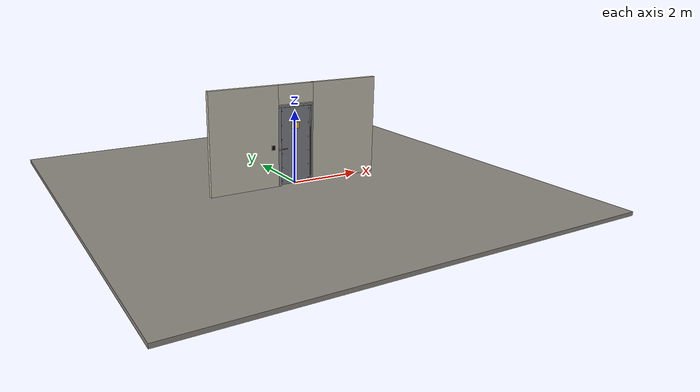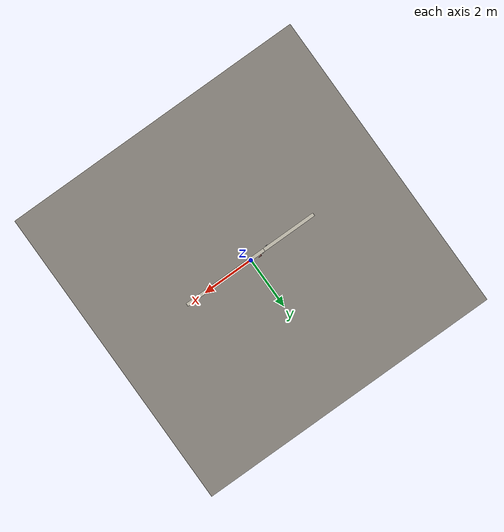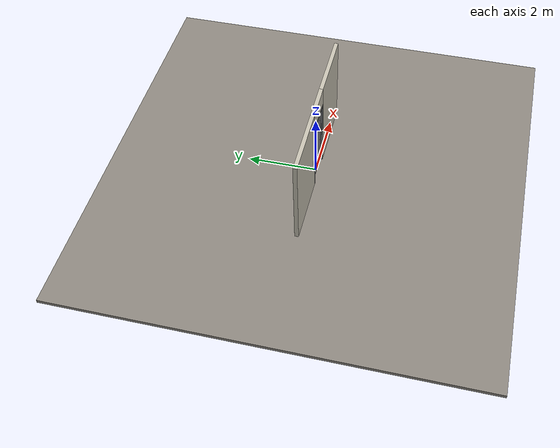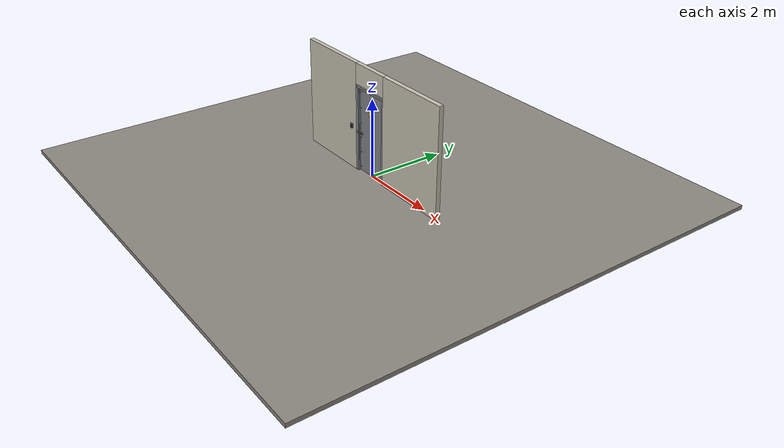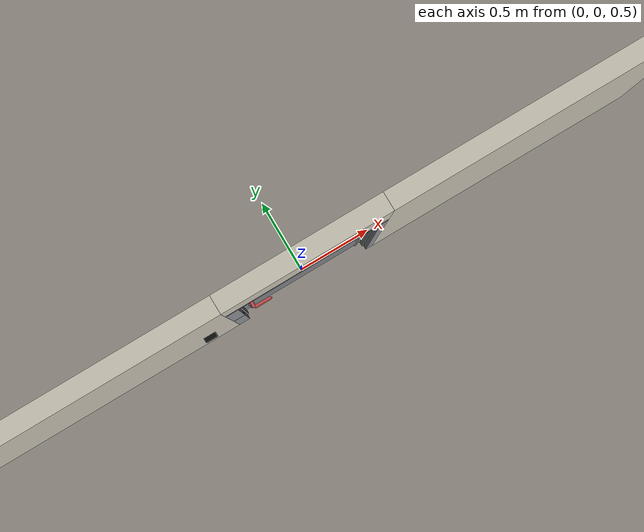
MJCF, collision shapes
<?xml version="1.0" ?>
<mujoco model="db0838_swing_single_full">
  <compiler angle="radian" meshdir="../../hardware" texturedir="../../textures" autolimits="true" inertiafromgeom="false"/>
  <option timestep="0.002" integrator="implicitfast" cone="elliptic" impratio="10" noslip_iterations="3">
    <flag multiccd="enable"/>
  </option>
  <size memory="16M"/>
  <default>
    <geom condim="4" solref="0.005 1" solimp="0.95 0.99 0.001"/>
    <joint solreflimit="0.005 1" solimplimit="0.95 0.99 0.001"/>
    <tendon solreflimit="0.005 1"/>
    <equality solref="0.002 1"/>
  </default>
  <visual>
    <headlight ambient="0.4 0.4 0.4" diffuse="0.7 0.7 0.7" specular="0.2 0.2 0.2"/>
    <quality shadowsize="4096"/>
    <map znear="0.01" zfar="60"/>
  </visual>
  <asset>
    <mesh name="hinge_ed08f20e7f" file="hinge_ed08f20e7f.obj"/>
    <mesh name="hinge_jamb_1278ce3e25" file="hinge_jamb_1278ce3e25.obj"/>
    <mesh name="lever_9f02b544cf" file="lever_9f02b544cf.obj"/>
    <material name="mat_floor" rgba="0.55 0.53 0.5 1" specular="0.2" shininess="0.15" reflectance="0"/>
    <material name="mat_wall" rgba="0.78 0.76 0.7 1" specular="0.2" shininess="0.1" reflectance="0"/>
    <material name="mat_leaf" rgba="0.5 0.51 0.53 1" specular="0.23" shininess="0.32" reflectance="0.02"/>
    <material name="mat_rivet" rgba="0.55 0.56 0.58 1" specular="0.8" shininess="0.55" reflectance="0.4"/>
    <material name="mat_hinge" rgba="0.65 0.66 0.68 1" specular="0.74" shininess="0.5" reflectance="0.36"/>
    <material name="mat_op_nickel_satin" rgba="0.72 0.7 0.66 1" specular="0.8" shininess="0.65" reflectance="0.4"/>
    <material name="mat_trim" rgba="0.85 0.66 0.3 1" specular="0.8" shininess="0.75" reflectance="0.4"/>
    <material name="mat_bolt" rgba="0.85 0.66 0.3 1" specular="0.8" shininess="0.75" reflectance="0.4"/>
    <material name="mat_frame" rgba="0.55 0.56 0.58 1" specular="0.8" shininess="0.55" reflectance="0.4"/>
    <material name="mat_placard" rgba="0.95 0.75 0.05 1" specular="0.2" shininess="0.5" reflectance="0"/>
    <material name="mat_wallreader" rgba="0.05 0.05 0.05 1" specular="0.38" shininess="0.3" reflectance="0.12"/>
    <texture name="skybox" type="skybox" builtin="gradient" rgb1="0.6 0.7 0.85" rgb2="0.9 0.92 0.95" width="256" height="256"/>
  </asset>
  <worldbody>
    <light name="sun" pos="1.5 -2.5 4" dir="-0.3 0.5 -0.8" directional="true" diffuse="0.8 0.8 0.8" specular="0.3 0.3 0.3" castshadow="true"/>
    <light name="fill" pos="-1.5 2.5 3" dir="0.3 -0.5 -0.7" directional="true" diffuse="0.35 0.35 0.4" castshadow="false"/>
    <camera name="robot_view" pos="0 -2.666313 1.812087" xyaxes="1 0 0 0 0.26963 0.962964" fovy="52"/>
    <camera name="far_view" pos="0 2.609312 1.812087" xyaxes="-1 0 0 0 -0.26963 0.962964" fovy="52"/>
    <camera name="iso" pos="-2.004737 -2.244263 2.234138" xyaxes="0.741536 -0.670913 0 0.242917 0.268487 0.932151" fovy="46"/>
    <camera name="detail_handle" pos="-0.1065 -0.877 1.296" xyaxes="0.97561 0.219512 0 -0.070934 0.315262 0.94635" fovy="38"/>
    <geom name="floor" type="box" size="6 6 0.05" pos="0 0 -0.05" material="mat_floor" group="0" contype="1" conaffinity="1" friction="0.8 0.005 0.0001" density="2400"/>
    <geom name="wall_left" type="box" size="0.97975 0.0575 1.3735" pos="-1.52025 -0.0285 1.3735" material="mat_wall" group="0" contype="1" conaffinity="1" friction="0.6 0.005 0.0001" density="800"/>
    <geom name="wall_right" type="box" size="0.99475 0.0575 1.3735" pos="1.50525 -0.0285 1.3735" material="mat_wall" group="0" contype="1" conaffinity="1" friction="0.6 0.005 0.0001" density="800"/>
    <geom name="wall_header" type="box" size="0.5255 0.0575 0.26" pos="-0.015 -0.0285 2.487" material="mat_wall" group="0" contype="1" conaffinity="1" friction="0.6 0.005 0.0001" density="800"/>
    <geom name="hinge_0_jamb" type="mesh" mesh="hinge_jamb_1278ce3e25" pos="0.4575 0.029 0.259" quat="0 0 0 1" material="mat_hinge" group="1" contype="0" conaffinity="0" density="7850"/>
    <geom name="hinge_1_jamb" type="mesh" mesh="hinge_jamb_1278ce3e25" pos="0.4575 0.029 1.076" quat="0 0 0 1" material="mat_hinge" group="1" contype="0" conaffinity="0" density="7850"/>
    <geom name="hinge_2_jamb" type="mesh" mesh="hinge_jamb_1278ce3e25" pos="0.4575 0.029 1.963" quat="0 0 0 1" material="mat_hinge" group="1" contype="0" conaffinity="0" density="7850"/>
    <geom name="jamb_hinge" type="box" size="0.025 0.0575 1.0735" pos="0.4855 -0.0285 1.0735" material="mat_frame" group="0" contype="1" conaffinity="1" friction="0.6 0.005 0.0001" density="300"/>
    <geom name="strike_1016_wall_n" type="box" size="0.04 0.03825 0.0183" pos="-0.5005 -0.04775 1.016" material="mat_frame" group="0" contype="1" conaffinity="1" friction="0.6 0.005 0.0001" density="300"/>
    <geom name="strike_1016_wall_p" type="box" size="0.04 0.008 0.0183" pos="-0.5005 0.0175 1.016" material="mat_frame" group="0" contype="1" conaffinity="1" friction="0.6 0.005 0.0001" density="300"/>
    <geom name="strike_1016_ramp" type="box" size="0.04 0.018028 0.0183" pos="-0.503782 0.018312 1.016" quat="0.957092 0 0 0.289784" material="mat_frame" group="0" contype="1" conaffinity="1" friction="0.12 0.005 0.0001" density="300"/>
    <geom name="strike_1016_back" type="box" size="0.0285 0.0095 0.0183" pos="-0.512 0 1.016" material="mat_frame" group="0" contype="1" conaffinity="1" friction="0.6 0.005 0.0001" density="300"/>
    <geom name="jamb_strike_0" type="box" size="0.04 0.0575 0.49885" pos="-0.5005 -0.0285 0.49885" material="mat_frame" group="0" contype="1" conaffinity="1" friction="0.6 0.005 0.0001" density="300"/>
    <geom name="jamb_strike_1" type="box" size="0.04 0.0575 0.55635" pos="-0.5005 -0.0285 1.59065" material="mat_frame" group="0" contype="1" conaffinity="1" friction="0.6 0.005 0.0001" density="300"/>
    <geom name="jamb_head" type="box" size="0.5255 0.0575 0.025" pos="-0.015 -0.0285 2.172" material="mat_frame" group="0" contype="1" conaffinity="1" friction="0.6 0.005 0.0001" density="300"/>
    <geom name="head_stud" type="box" size="0.5255 0.0575 0.015" pos="-0.015 -0.0285 2.212" material="mat_wall" group="0" contype="1" conaffinity="1" friction="0.6 0.005 0.0001" density="500"/>
    <geom name="stop_hinge" type="box" size="0.0055 0.016 1.0735" pos="0.455 -0.0385 1.0735" material="mat_frame" group="0" contype="1" conaffinity="1" friction="0.6 0.005 0.0001" density="300"/>
    <geom name="stop_strike" type="box" size="0.0055 0.016 1.0735" pos="-0.455 -0.0385 1.0735" material="mat_frame" group="0" contype="1" conaffinity="1" friction="0.6 0.005 0.0001" density="300"/>
    <geom name="stop_head" type="box" size="0.4605 0.016 0.0055" pos="0 -0.0385 2.1415" material="mat_frame" group="0" contype="1" conaffinity="1" friction="0.6 0.005 0.0001" density="300"/>
    <geom name="wall_reader" type="box" size="0.04 0.015 0.06" pos="-0.7105 -0.101 1.1" material="mat_wallreader" group="0" contype="1" conaffinity="1" friction="0.6 0.005 0.0001" density="1000"/>
    <site name="approach_point" pos="0 -1.5 0" quat="1 0 0 0" size="0.05" rgba="0.2 0.9 0.2 0.5" group="4"/>
    <site name="goal_point" pos="0 1.5 0" quat="1 0 0 0" size="0.05" rgba="0.2 0.9 0.2 0.5" group="4"/>
    <site name="door_plane_center" pos="0 0 1.0735" quat="1 0 0 0" size="0.02" rgba="0.2 0.9 0.2 0.5" group="4"/>
    <body name="leaf" pos="0.4605 0 0">
      <inertial pos="-0.454966 0.000025 1.076691" mass="85.997416" quat="0.499745 0.500451 -0.499555 0.500248" diaginertia="6.197400006 32.779198807 38.94748158"/>
      <joint name="leaf_hinge" type="hinge" axis="0 0 -1" pos="-0.003 0.029 0" limited="true" range="0 1.919862" damping="0.318966" frictionloss="0.532032" armature="0.02"/>
      <geom name="leaf_slab" type="box" size="0.457 0.022 1.067" pos="-0.46 0 1.076" material="mat_leaf" group="0" contype="1" conaffinity="1" friction="0.45 0.005 0.0001" density="1"/>
      <geom name="leaf_rivet_0_0" type="sphere" size="0.012" pos="-0.053 -0.022 0.109" material="mat_rivet" group="2" contype="0" conaffinity="0" density="7850"/>
      <geom name="leaf_rivet_0_1" type="sphere" size="0.012" pos="-0.867 -0.022 0.109" material="mat_rivet" group="2" contype="0" conaffinity="0" density="7850"/>
      <geom name="leaf_rivet_1_0" type="sphere" size="0.012" pos="-0.053 -0.022 0.4958" material="mat_rivet" group="2" contype="0" conaffinity="0" density="7850"/>
      <geom name="leaf_rivet_1_1" type="sphere" size="0.012" pos="-0.867 -0.022 0.4958" material="mat_rivet" group="2" contype="0" conaffinity="0" density="7850"/>
      <geom name="leaf_rivet_2_0" type="sphere" size="0.012" pos="-0.053 -0.022 0.8826" material="mat_rivet" group="2" contype="0" conaffinity="0" density="7850"/>
      <geom name="leaf_rivet_2_1" type="sphere" size="0.012" pos="-0.867 -0.022 0.8826" material="mat_rivet" group="2" contype="0" conaffinity="0" density="7850"/>
      <geom name="leaf_rivet_3_0" type="sphere" size="0.012" pos="-0.053 -0.022 1.2694" material="mat_rivet" group="2" contype="0" conaffinity="0" density="7850"/>
      <geom name="leaf_rivet_3_1" type="sphere" size="0.012" pos="-0.867 -0.022 1.2694" material="mat_rivet" group="2" contype="0" conaffinity="0" density="7850"/>
      <geom name="leaf_rivet_4_0" type="sphere" size="0.012" pos="-0.053 -0.022 1.6562" material="mat_rivet" group="2" contype="0" conaffinity="0" density="7850"/>
      <geom name="leaf_rivet_4_1" type="sphere" size="0.012" pos="-0.867 -0.022 1.6562" material="mat_rivet" group="2" contype="0" conaffinity="0" density="7850"/>
      <geom name="leaf_rivet_5_0" type="sphere" size="0.012" pos="-0.053 -0.022 2.043" material="mat_rivet" group="2" contype="0" conaffinity="0" density="7850"/>
      <geom name="leaf_rivet_5_1" type="sphere" size="0.012" pos="-0.867 -0.022 2.043" material="mat_rivet" group="2" contype="0" conaffinity="0" density="7850"/>
      <geom name="hinge_0" type="mesh" mesh="hinge_ed08f20e7f" pos="-0.003 0.029 0.259" quat="0 0 0 1" material="mat_hinge" group="1" contype="0" conaffinity="0" density="7850"/>
      <geom name="hinge_1" type="mesh" mesh="hinge_ed08f20e7f" pos="-0.003 0.029 1.076" quat="0 0 0 1" material="mat_hinge" group="1" contype="0" conaffinity="0" density="7850"/>
      <geom name="hinge_2" type="mesh" mesh="hinge_ed08f20e7f" pos="-0.003 0.029 1.963" quat="0 0 0 1" material="mat_hinge" group="1" contype="0" conaffinity="0" density="7850"/>
      <geom name="leaf_latch_bolt_faceplate" type="box" size="0.0006 0.014 0.0283" pos="-0.9164 0 1.016" material="mat_bolt" group="1" contype="0" conaffinity="0" density="8500"/>
      <geom name="warning_placard" type="box" size="0.11 0.001 0.08" pos="-0.46 -0.023 1.6095" material="mat_placard" group="2" contype="0" conaffinity="0" density="1000"/>
      <site name="leaf_edge_mid" pos="-0.917 0 1.067" quat="1 0 0 0" size="0.02" rgba="0.2 0.9 0.2 0.5" group="4"/>
      <body name="leaf_handle" pos="-0.847 0 1.016">
        <inertial pos="0.028544 0 0" mass="0.978187" quat="0 0.707107 0.707107 0" diaginertia="0.001772047 0.003604455 0.005198299"/>
        <joint name="leaf_handle_hinge" type="hinge" axis="0 1 0" limited="true" range="0 0.96" damping="0.245624" frictionloss="0.048" stiffness="1.2" springref="-0.458333" armature="0.01"/>
        <geom name="leaf_handle_spindle" type="cylinder" size="0.006 0.03" pos="0 0 0" quat="0.707107 -0.707107 0 0" material="mat_op_nickel_satin" group="1" contype="0" conaffinity="0" density="7850"/>
        <geom name="leaf_handle_lever_n" type="mesh" mesh="lever_9f02b544cf" pos="0 -0.022 0" quat="0 0 -0.707107 0.707107" material="mat_op_nickel_satin" group="1" contype="0" conaffinity="0" density="3000"/>
        <geom name="leaf_handle_lever_col_n" type="capsule" size="0.0095 0.053" pos="0.0625 -0.077 0" quat="0.707107 0 0.707107 0" material="mat_op_nickel_satin" group="3" contype="1" conaffinity="1" rgba="0.8 0.3 0.3 0.25" friction="0.7 0.01 0.0001" density="3000"/>
        <geom name="leaf_handle_hub_col_n" type="cylinder" size="0.012 0.022" pos="0 -0.052 0" quat="0.707107 -0.707107 0 0" material="mat_op_nickel_satin" group="3" contype="1" conaffinity="1" rgba="0.8 0.3 0.3 0.25" friction="0.6 0.005 0.0001" density="3000"/>
        <geom name="leaf_handle_lever_p" type="mesh" mesh="lever_9f02b544cf" pos="0 0.022 0" quat="0 0 0.707107 0.707107" material="mat_op_nickel_satin" group="1" contype="0" conaffinity="0" density="3000"/>
        <geom name="leaf_handle_lever_col_p" type="capsule" size="0.0095 0.053" pos="0.0625 0.077 0" quat="0.707107 0 0.707107 0" material="mat_op_nickel_satin" group="3" contype="1" conaffinity="1" rgba="0.8 0.3 0.3 0.25" friction="0.7 0.01 0.0001" density="3000"/>
        <geom name="leaf_handle_hub_col_p" type="cylinder" size="0.012 0.022" pos="0 0.052 0" quat="0.707107 -0.707107 0 0" material="mat_op_nickel_satin" group="3" contype="1" conaffinity="1" rgba="0.8 0.3 0.3 0.25" friction="0.6 0.005 0.0001" density="3000"/>
        <site name="leaf_handle_grip_n" pos="0.1 -0.077 0" quat="1 0 0 0" size="0.012" rgba="0.2 0.9 0.2 0.5" group="4"/>
        <site name="leaf_handle_grip_p" pos="0.1 0.077 0" quat="1 0 0 0" size="0.012" rgba="0.2 0.9 0.2 0.5" group="4"/>
      </body>
      <body name="leaf_latch_bolt" pos="-0.917 0 1.016">
        <inertial pos="0.0055 0 0" mass="0.074627" quat="0.92388 0.382683 0 0" diaginertia="0.000002271 0.000013255 0.000013255"/>
        <joint name="leaf_latch_bolt_slide" type="slide" axis="1 0 0" limited="true" range="0 0.019" damping="2" frictionloss="0.3" stiffness="600" springref="-0.01" armature="0.1"/>
        <geom name="leaf_latch_bolt_capsule" type="capsule" size="0.008 0.0165" pos="0.0055 0 0" quat="0.707107 0 -0.707107 0" material="mat_bolt" group="0" contype="1" conaffinity="1" friction="0.2 0.005 0.0001" density="8500"/>
      </body>
    </body>
  </worldbody>
  <tendon>
    <fixed name="leaf_latch_bolt_coupling" limited="true" range="0 10">
      <joint joint="leaf_latch_bolt_slide" coef="1"/>
      <joint joint="leaf_handle_hinge" coef="-0.020879"/>
    </fixed>
  </tendon>
  <sensor>
    <jointpos name="leaf_hinge_pos" joint="leaf_hinge"/>
    <jointvel name="leaf_hinge_vel" joint="leaf_hinge"/>
    <jointpos name="leaf_handle_hinge_pos" joint="leaf_handle_hinge"/>
    <jointvel name="leaf_handle_hinge_vel" joint="leaf_handle_hinge"/>
    <jointpos name="leaf_latch_bolt_slide_pos" joint="leaf_latch_bolt_slide"/>
    <jointvel name="leaf_latch_bolt_slide_vel" joint="leaf_latch_bolt_slide"/>
  </sensor>
</mujoco>
